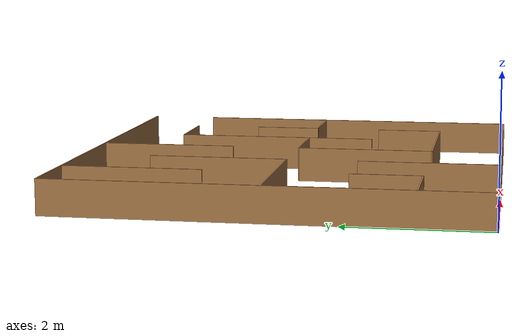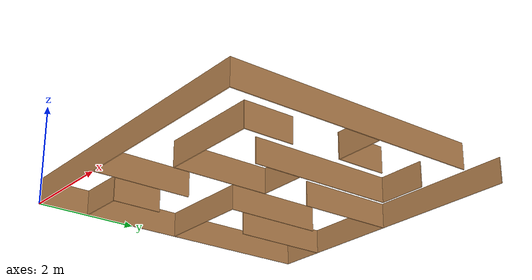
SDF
<?xml version='1.0'?>
<sdf version='1.6'>
  <model name='Maze1'>
    <pose frame=''>3 2.98892 0 0 -0 0</pose>
    <link name='Wall_0'>
      <collision name='Wall_0_Collision'>
        <geometry>
          <box>
            <size>6 0.02 0.5</size>
          </box>
        </geometry>
        <pose frame=''>0 0 0.25 0 -0 0</pose>
      </collision>
      <visual name='Wall_0_Visual'>
        <pose frame=''>0 0 0.25 0 -0 0</pose>
        <geometry>
          <box>
            <size>6 0.02 0.5</size>
          </box>
        </geometry>
        <material>
          <script>
            <uri>file://media/materials/scripts/gazebo.material</uri>
            <name>Gazebo/Wood</name>
          </script>
          <ambient>1 1 1 1</ambient>
        </material>
        <meta>
          <layer>0</layer>
        </meta>
      </visual>
      <pose frame=''>0 -2.99014 0 0 -0 0</pose>
    </link>
    <link name='Wall_11'>
      <collision name='Wall_11_Collision'>
        <geometry>
          <box>
            <size>1 0.02 0.5</size>
          </box>
        </geometry>
        <pose frame=''>0 0 0.25 0 -0 0</pose>
      </collision>
      <visual name='Wall_11_Visual'>
        <pose frame=''>0 0 0.25 0 -0 0</pose>
        <geometry>
          <box>
            <size>1 0.02 0.5</size>
          </box>
        </geometry>
        <material>
          <script>
            <uri>file://media/materials/scripts/gazebo.material</uri>
            <name>Gazebo/Wood</name>
          </script>
          <ambient>1 1 1 1</ambient>
        </material>
        <meta>
          <layer>0</layer>
        </meta>
      </visual>
      <pose frame=''>-1.99301 -1.49653 0 0 -0 -1.5708</pose>
    </link>
    <link name='Wall_13'>
      <collision name='Wall_13_Collision'>
        <geometry>
          <box>
            <size>2 0.02 0.5</size>
          </box>
        </geometry>
        <pose frame=''>0 0 0.25 0 -0 0</pose>
      </collision>
      <visual name='Wall_13_Visual'>
        <pose frame=''>0 0 0.25 0 -0 0</pose>
        <geometry>
          <box>
            <size>2 0.02 0.5</size>
          </box>
        </geometry>
        <material>
          <script>
            <uri>file://media/materials/scripts/gazebo.material</uri>
            <name>Gazebo/Wood</name>
          </script>
          <ambient>1 1 1 1</ambient>
        </material>
        <meta>
          <layer>0</layer>
        </meta>
      </visual>
      <pose frame=''>-0.998553 -1.99778 0 0 -0 -1.5708</pose>
    </link>
    <link name='Wall_15'>
      <collision name='Wall_15_Collision'>
        <geometry>
          <box>
            <size>2 0.02 0.5</size>
          </box>
        </geometry>
        <pose frame=''>0 0 0.25 0 -0 0</pose>
      </collision>
      <visual name='Wall_15_Visual'>
        <pose frame=''>0 0 0.25 0 -0 0</pose>
        <geometry>
          <box>
            <size>2 0.02 0.5</size>
          </box>
        </geometry>
        <material>
          <script>
            <uri>file://media/materials/scripts/gazebo.material</uri>
            <name>Gazebo/Wood</name>
          </script>
          <ambient>1 1 1 1</ambient>
        </material>
        <meta>
          <layer>0</layer>
        </meta>
      </visual>
      <pose frame=''>-1.9981 0.012574 0 0 -0 0</pose>
    </link>
    <link name='Wall_17'>
      <collision name='Wall_17_Collision'>
        <geometry>
          <box>
            <size>2 0.02 0.5</size>
          </box>
        </geometry>
        <pose frame=''>0 0 0.25 0 -0 0</pose>
      </collision>
      <visual name='Wall_17_Visual'>
        <pose frame=''>0 0 0.25 0 -0 0</pose>
        <geometry>
          <box>
            <size>2 0.02 0.5</size>
          </box>
        </geometry>
        <material>
          <script>
            <uri>file://media/materials/scripts/gazebo.material</uri>
            <name>Gazebo/Wood</name>
          </script>
          <ambient>1 1 1 1</ambient>
        </material>
        <meta>
          <layer>0</layer>
        </meta>
      </visual>
      <pose frame=''>-2.00156 2.00014 0 0 -0 -1.5708</pose>
    </link>
    <link name='Wall_19'>
      <collision name='Wall_19_Collision'>
        <geometry>
          <box>
            <size>2 0.02 0.5</size>
          </box>
        </geometry>
        <pose frame=''>0 0 0.25 0 -0 0</pose>
      </collision>
      <visual name='Wall_19_Visual'>
        <pose frame=''>0 0 0.25 0 -0 0</pose>
        <geometry>
          <box>
            <size>2 0.02 0.5</size>
          </box>
        </geometry>
        <material>
          <script>
            <uri>file://media/materials/scripts/gazebo.material</uri>
            <name>Gazebo/Wood</name>
          </script>
          <ambient>1 1 1 1</ambient>
        </material>
        <meta>
          <layer>0</layer>
        </meta>
      </visual>
      <pose frame=''>-1.00741 1.00343 0 0 -0 -1.5708</pose>
    </link>
    <link name='Wall_21'>
      <collision name='Wall_21_Collision'>
        <geometry>
          <box>
            <size>2 0.02 0.5</size>
          </box>
        </geometry>
        <pose frame=''>0 0 0.25 0 -0 0</pose>
      </collision>
      <visual name='Wall_21_Visual'>
        <pose frame=''>0 0 0.25 0 -0 0</pose>
        <geometry>
          <box>
            <size>2 0.02 0.5</size>
          </box>
        </geometry>
        <material>
          <script>
            <uri>file://media/materials/scripts/gazebo.material</uri>
            <name>Gazebo/Wood</name>
          </script>
          <ambient>1 1 1 1</ambient>
        </material>
        <meta>
          <layer>0</layer>
        </meta>
      </visual>
      <pose frame=''>-0.001533 1.99564 0 0 -0 -1.5708</pose>
    </link>
    <link name='Wall_23'>
      <collision name='Wall_23_Collision'>
        <geometry>
          <box>
            <size>2 0.02 0.5</size>
          </box>
        </geometry>
        <pose frame=''>0 0 0.25 0 -0 0</pose>
      </collision>
      <visual name='Wall_23_Visual'>
        <pose frame=''>0 0 0.25 0 -0 0</pose>
        <geometry>
          <box>
            <size>2 0.02 0.5</size>
          </box>
        </geometry>
        <material>
          <script>
            <uri>file://media/materials/scripts/gazebo.material</uri>
            <name>Gazebo/Wood</name>
          </script>
          <ambient>1 1 1 1</ambient>
        </material>
        <meta>
          <layer>0</layer>
        </meta>
      </visual>
      <pose frame=''>0.001314 -0.988619 0 0 -0 -1.5708</pose>
    </link>
    <link name='Wall_25'>
      <collision name='Wall_25_Collision'>
        <geometry>
          <box>
            <size>1 0.02 0.5</size>
          </box>
        </geometry>
        <pose frame=''>0 0 0.25 0 -0 0</pose>
      </collision>
      <visual name='Wall_25_Visual'>
        <pose frame=''>0 0 0.25 0 -0 0</pose>
        <geometry>
          <box>
            <size>1 0.02 0.5</size>
          </box>
        </geometry>
        <material>
          <script>
            <uri>file://media/materials/scripts/gazebo.material</uri>
            <name>Gazebo/Wood</name>
          </script>
          <ambient>1 1 1 1</ambient>
        </material>
        <meta>
          <layer>0</layer>
        </meta>
      </visual>
      <pose frame=''>0.491314 0.001381 0 0 -0 0</pose>
    </link>
    <link name='Wall_27'>
      <collision name='Wall_27_Collision'>
        <geometry>
          <box>
            <size>3 0.02 0.5</size>
          </box>
        </geometry>
        <pose frame=''>0 0 0.25 0 -0 0</pose>
      </collision>
      <visual name='Wall_27_Visual'>
        <pose frame=''>0 0 0.25 0 -0 0</pose>
        <geometry>
          <box>
            <size>3 0.02 0.5</size>
          </box>
        </geometry>
        <material>
          <script>
            <uri>file://media/materials/scripts/gazebo.material</uri>
            <name>Gazebo/Wood</name>
          </script>
          <ambient>1 1 1 1</ambient>
        </material>
        <meta>
          <layer>0</layer>
        </meta>
      </visual>
      <pose frame=''>0.999582 0.514227 0 0 -0 -1.5708</pose>
    </link>
    <link name='Wall_29'>
      <collision name='Wall_29_Collision'>
        <geometry>
          <box>
            <size>1 0.02 0.5</size>
          </box>
        </geometry>
        <pose frame=''>0 0 0.25 0 -0 0</pose>
      </collision>
      <visual name='Wall_29_Visual'>
        <pose frame=''>0 0 0.25 0 -0 0</pose>
        <geometry>
          <box>
            <size>1 0.02 0.5</size>
          </box>
        </geometry>
        <material>
          <script>
            <uri>file://media/materials/scripts/gazebo.material</uri>
            <name>Gazebo/Wood</name>
          </script>
          <ambient>1 1 1 1</ambient>
        </material>
        <meta>
          <layer>0</layer>
        </meta>
      </visual>
      <pose frame=''>1.49095 2.00515 0 0 -0 0</pose>
    </link>
    <link name='Wall_3'>
      <collision name='Wall_3_Collision'>
        <geometry>
          <box>
            <size>6 0.02 0.5</size>
          </box>
        </geometry>
        <pose frame=''>0 0 0.25 0 -0 0</pose>
      </collision>
      <visual name='Wall_3_Visual'>
        <pose frame=''>0 0 0.25 0 -0 0</pose>
        <geometry>
          <box>
            <size>6 0.02 0.5</size>
          </box>
        </geometry>
        <material>
          <script>
            <uri>file://media/materials/scripts/gazebo.material</uri>
            <name>Gazebo/Wood</name>
          </script>
          <ambient>1 1 1 1</ambient>
        </material>
        <meta>
          <layer>0</layer>
        </meta>
      </visual>
      <pose frame=''>-2.99 -0.000138 0 0 -0 1.5708</pose>
    </link>
    <link name='Wall_31'>
      <collision name='Wall_31_Collision'>
        <geometry>
          <box>
            <size>1 0.02 0.5</size>
          </box>
        </geometry>
        <pose frame=''>0 0 0.25 0 -0 0</pose>
      </collision>
      <visual name='Wall_31_Visual'>
        <pose frame=''>0 0 0.25 0 -0 0</pose>
        <geometry>
          <box>
            <size>1 0.02 0.5</size>
          </box>
        </geometry>
        <material>
          <script>
            <uri>file://media/materials/scripts/gazebo.material</uri>
            <name>Gazebo/Wood</name>
          </script>
          <ambient>1 1 1 1</ambient>
        </material>
        <meta>
          <layer>0</layer>
        </meta>
      </visual>
      <pose frame=''>2.49842 0.01279 0 0 -0 0</pose>
    </link>
    <link name='Wall_33'>
      <collision name='Wall_33_Collision'>
        <geometry>
          <box>
            <size>1 0.02 0.5</size>
          </box>
        </geometry>
        <pose frame=''>0 0 0.25 0 -0 0</pose>
      </collision>
      <visual name='Wall_33_Visual'>
        <pose frame=''>0 0 0.25 0 -0 0</pose>
        <geometry>
          <box>
            <size>1 0.02 0.5</size>
          </box>
        </geometry>
        <material>
          <script>
            <uri>file://media/materials/scripts/gazebo.material</uri>
            <name>Gazebo/Wood</name>
          </script>
          <ambient>1 1 1 1</ambient>
        </material>
        <meta>
          <layer>0</layer>
        </meta>
      </visual>
      <pose frame=''>2.00808 0.502608 0 0 -0 1.5708</pose>
    </link>
    <link name='Wall_35'>
      <collision name='Wall_35_Collision'>
        <geometry>
          <box>
            <size>2 0.02 0.5</size>
          </box>
        </geometry>
        <pose frame=''>0 0 0.25 0 -0 0</pose>
      </collision>
      <visual name='Wall_35_Visual'>
        <pose frame=''>0 0 0.25 0 -0 0</pose>
        <geometry>
          <box>
            <size>2 0.02 0.5</size>
          </box>
        </geometry>
        <material>
          <script>
            <uri>file://media/materials/scripts/gazebo.material</uri>
            <name>Gazebo/Wood</name>
          </script>
          <ambient>1 1 1 1</ambient>
        </material>
        <meta>
          <layer>0</layer>
        </meta>
      </visual>
      <pose frame=''>0.991089 -1.97883 0 0 -0 0</pose>
    </link>
    <link name='Wall_38'>
      <collision name='Wall_38_Collision'>
        <geometry>
          <box>
            <size>1 0.02 0.5</size>
          </box>
        </geometry>
        <pose frame=''>0 0 0.25 0 -0 0</pose>
      </collision>
      <visual name='Wall_38_Visual'>
        <pose frame=''>0 0 0.25 0 -0 0</pose>
        <geometry>
          <box>
            <size>1 0.02 0.5</size>
          </box>
        </geometry>
        <material>
          <script>
            <uri>file://media/materials/scripts/gazebo.material</uri>
            <name>Gazebo/Wood</name>
          </script>
          <ambient>1 1 1 1</ambient>
        </material>
        <meta>
          <layer>0</layer>
        </meta>
      </visual>
      <pose frame=''>1.99511 -1.48824 0 0 -0 -1.5708</pose>
    </link>
    <link name='Wall_5'>
      <collision name='Wall_5_Collision'>
        <geometry>
          <box>
            <size>6 0.02 0.5</size>
          </box>
        </geometry>
        <pose frame=''>0 0 0.25 0 -0 0</pose>
      </collision>
      <visual name='Wall_5_Visual'>
        <pose frame=''>0 0 0.25 0 -0 0</pose>
        <geometry>
          <box>
            <size>6 0.02 0.5</size>
          </box>
        </geometry>
        <material>
          <script>
            <uri>file://media/materials/scripts/gazebo.material</uri>
            <name>Gazebo/Wood</name>
          </script>
          <ambient>1 1 1 1</ambient>
        </material>
        <meta>
          <layer>0</layer>
        </meta>
      </visual>
      <pose frame=''>0 2.98986 0 0 -0 0</pose>
    </link>
    <link name='Wall_7'>
      <collision name='Wall_7_Collision'>
        <geometry>
          <box>
            <size>5 0.02 0.5</size>
          </box>
        </geometry>
        <pose frame=''>0 0 0.25 0 -0 0</pose>
      </collision>
      <visual name='Wall_7_Visual'>
        <pose frame=''>0 0 0.25 0 -0 0</pose>
        <geometry>
          <box>
            <size>5 0.02 0.5</size>
          </box>
        </geometry>
        <material>
          <script>
            <uri>file://media/materials/scripts/gazebo.material</uri>
            <name>Gazebo/Wood</name>
          </script>
          <ambient>1 1 1 1</ambient>
        </material>
        <meta>
          <layer>0</layer>
        </meta>
      </visual>
      <pose frame=''>2.99 -0.500138 0 0 -0 1.5708</pose>
    </link>
    <link name='Wall_9'>
      <collision name='Wall_9_Collision'>
        <geometry>
          <box>
            <size>1 0.02 0.5</size>
          </box>
        </geometry>
        <pose frame=''>0 0 0.25 0 -0 0</pose>
      </collision>
      <visual name='Wall_9_Visual'>
        <pose frame=''>0 0 0.25 0 -0 0</pose>
        <geometry>
          <box>
            <size>1 0.02 0.5</size>
          </box>
        </geometry>
        <material>
          <script>
            <uri>file://media/materials/scripts/gazebo.material</uri>
            <name>Gazebo/Wood</name>
          </script>
          <ambient>1 1 1 1</ambient>
        </material>
        <meta>
          <layer>0</layer>
        </meta>
      </visual>
      <pose frame=''>-2.48505 -1.98627 0 0 -0 0</pose>
    </link>
    <static>1</static>
  </model>
</sdf>
